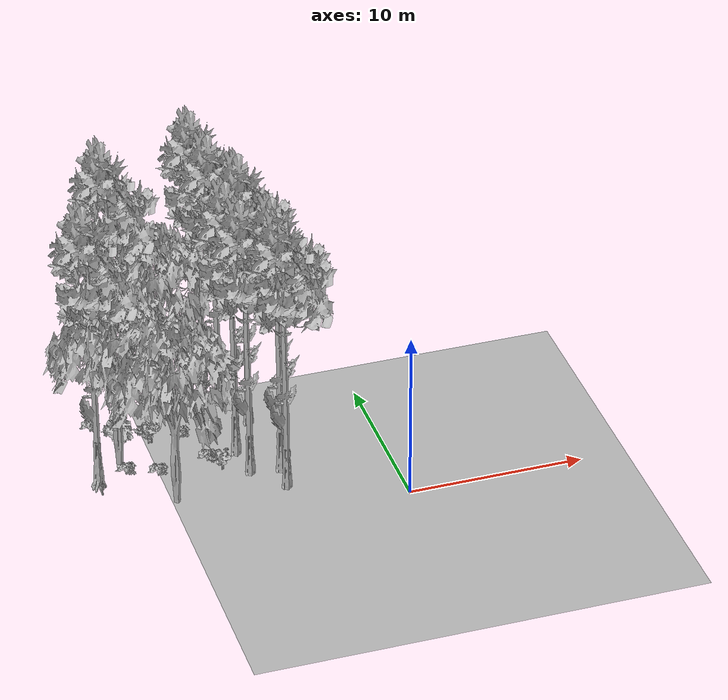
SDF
<sdf version="1.7">
 <world name="default">
  <model name="ground_plane">
   <static>1</static>
   <link name="link">
    <collision name="collision">
     <pose>-50 0 0 0 -0 0</pose>
     <geometry><plane><normal>0 0 1</normal><size>80 80</size></plane></geometry>
     <surface><contact><ode><min_depth>0.01</min_depth><max_vel>0</max_vel></ode></contact></surface>
    </collision>
    <visual name="grass">
     <cast_shadows>0</cast_shadows>
     <geometry>
      <mesh>
       <scale>0.46714285714285714 0.46714285714285714 0.1</scale>
       <uri>file://grass_plane/meshes/grass_plane.dae</uri>
      </mesh>
     </geometry>
    </visual>
   </link>
  </model>
  <model name="Tree 45">
   <static>1</static>
   <pose>-13.327303797383582 12.374902359999602 0 1.57079 -0 0</pose>
   <link name="link">
    <collision name="collision">
     <geometry><mesh><scale>3.5 5 3.5</scale><uri>model://tree_9/meshes/tree_9.obj</uri></mesh></geometry>
    </collision>
    <visual name="visual">
     <geometry><mesh><scale>3.5 5 3.5</scale><uri>model://tree_9/meshes/tree_9.obj</uri></mesh></geometry>
    </visual>
   </link>
  </model>
  <model name="Tree 61">
   <static>1</static>
   <pose>-12.430260159815973 3.0527523771211023 0 1.57079 -0 0</pose>
   <link name="link">
    <collision name="collision">
     <geometry><mesh><scale>3.5 5 3.5</scale><uri>model://tree_2/meshes/tree_2.obj</uri></mesh></geometry>
    </collision>
    <visual name="visual">
     <geometry><mesh><scale>3.5 5 3.5</scale><uri>model://tree_2/meshes/tree_2.obj</uri></mesh></geometry>
    </visual>
   </link>
  </model>
  <model name="Tree 108">
   <static>1</static>
   <pose>-15.920093412465555 6.312259931016911 0 1.57079 -0 0</pose>
   <link name="link">
    <collision name="collision">
     <geometry><mesh><scale>3.5 5 3.5</scale><uri>model://tree_9/meshes/tree_9.obj</uri></mesh></geometry>
    </collision>
    <visual name="visual">
     <geometry><mesh><scale>3.5 5 3.5</scale><uri>model://tree_9/meshes/tree_9.obj</uri></mesh></geometry>
    </visual>
   </link>
  </model>
  <model name="Tree 134">
   <static>1</static>
   <pose>-14.575441794545334 7.160118310140405 0 1.57079 -0 0</pose>
   <link name="link">
    <collision name="collision">
     <geometry><mesh><scale>3.5 5 3.5</scale><uri>model://tree_2/meshes/tree_2.obj</uri></mesh></geometry>
    </collision>
    <visual name="visual">
     <geometry><mesh><scale>3.5 5 3.5</scale><uri>model://tree_2/meshes/tree_2.obj</uri></mesh></geometry>
    </visual>
   </link>
  </model>
  <model name="Tree 144">
   <static>1</static>
   <pose>-8.034001315591606 6.3796187360879415 0 1.57079 -0 0</pose>
   <link name="link">
    <collision name="collision">
     <geometry><mesh><scale>3.5 5 3.5</scale><uri>model://tree_9/meshes/tree_9.obj</uri></mesh></geometry>
    </collision>
    <visual name="visual">
     <geometry><mesh><scale>3.5 5 3.5</scale><uri>model://tree_9/meshes/tree_9.obj</uri></mesh></geometry>
    </visual>
   </link>
  </model>
  <model name="Tree 205">
   <static>1</static>
   <pose>-6.253399948350676 2.498516302489932 0 1.57079 -0 0</pose>
   <link name="link">
    <collision name="collision">
     <geometry><mesh><scale>3.5 5 3.5</scale><uri>model://tree_9/meshes/tree_9.obj</uri></mesh></geometry>
    </collision>
    <visual name="visual">
     <geometry><mesh><scale>3.5 5 3.5</scale><uri>model://tree_9/meshes/tree_9.obj</uri></mesh></geometry>
    </visual>
   </link>
  </model>
  <model name="Tree 247">
   <static>1</static>
   <pose>-7.79886010430252 14.084381278126791 0 1.57079 -0 0</pose>
   <link name="link">
    <collision name="collision">
     <geometry><mesh><scale>3.5 5 3.5</scale><uri>model://tree_9/meshes/tree_9.obj</uri></mesh></geometry>
    </collision>
    <visual name="visual">
     <geometry><mesh><scale>3.5 5 3.5</scale><uri>model://tree_9/meshes/tree_9.obj</uri></mesh></geometry>
    </visual>
   </link>
  </model>
  <model name="Tree 305">
   <static>1</static>
   <pose>-6.119344591131082 4.107920647875417 0 1.57079 -0 0</pose>
   <link name="link">
    <collision name="collision">
     <geometry><mesh><scale>3.5 5 3.5</scale><uri>model://tree_9/meshes/tree_9.obj</uri></mesh></geometry>
    </collision>
    <visual name="visual">
     <geometry><mesh><scale>3.5 5 3.5</scale><uri>model://tree_9/meshes/tree_9.obj</uri></mesh></geometry>
    </visual>
   </link>
  </model>
  <model name="Tree 337">
   <static>1</static>
   <pose>-7.609581917076259 11.363712276573054 0 1.57079 -0 0</pose>
   <link name="link">
    <collision name="collision">
     <geometry><mesh><scale>3.5 5 3.5</scale><uri>model://tree_9/meshes/tree_9.obj</uri></mesh></geometry>
    </collision>
    <visual name="visual">
     <geometry><mesh><scale>3.5 5 3.5</scale><uri>model://tree_9/meshes/tree_9.obj</uri></mesh></geometry>
    </visual>
   </link>
  </model>
  <model name="Tree 434">
   <static>1</static>
   <pose>-11.061807336321504 12.248148437770467 0 1.57079 -0 0</pose>
   <link name="link">
    <collision name="collision">
     <geometry><mesh><scale>3.5 5 3.5</scale><uri>model://tree_2/meshes/tree_2.obj</uri></mesh></geometry>
    </collision>
    <visual name="visual">
     <geometry><mesh><scale>3.5 5 3.5</scale><uri>model://tree_2/meshes/tree_2.obj</uri></mesh></geometry>
    </visual>
   </link>
  </model>
  <model name="Tree 438">
   <static>1</static>
   <pose>-6.57428874936155 8.930906844108428 0 1.57079 -0 0</pose>
   <link name="link">
    <collision name="collision">
     <geometry><mesh><scale>3.5 5 3.5</scale><uri>model://tree_9/meshes/tree_9.obj</uri></mesh></geometry>
    </collision>
    <visual name="visual">
     <geometry><mesh><scale>3.5 5 3.5</scale><uri>model://tree_9/meshes/tree_9.obj</uri></mesh></geometry>
    </visual>
   </link>
  </model>
  <model name="Tree 599">
   <static>1</static>
   <pose>-7.810266054121161 4.354440784657605 0 1.57079 -0 0</pose>
   <link name="link">
    <collision name="collision">
     <geometry><mesh><scale>3.5 5 3.5</scale><uri>model://tree_9/meshes/tree_9.obj</uri></mesh></geometry>
    </collision>
    <visual name="visual">
     <geometry><mesh><scale>3.5 5 3.5</scale><uri>model://tree_9/meshes/tree_9.obj</uri></mesh></geometry>
    </visual>
   </link>
  </model>
  <model name="Bush 15">
   <static>1</static>
   <pose>-10.475844090487087 9.188786663878005 0 1.57079 -0 0</pose>
   <link name="link">
    <collision name="collision">
     <geometry><mesh><scale>2 2 2</scale><uri>model://bush_2/meshes/bush_2.obj</uri></mesh></geometry>
     <surface><contact><collide_without_contact>false</collide_without_contact></contact></surface>
    </collision>
    <visual name="visual">
     <geometry><mesh><scale>2 2 2</scale><uri>model://bush_2/meshes/bush_2.obj</uri></mesh></geometry>
    </visual>
   </link>
  </model>
  <model name="Bush 31">
   <static>1</static>
   <pose>-15.129125335544874 11.303893940587855 0 1.57079 -0 0</pose>
   <link name="link">
    <collision name="collision">
     <geometry><mesh><scale>2 2 2</scale><uri>model://bush_2/meshes/bush_2.obj</uri></mesh></geometry>
     <surface><contact><collide_without_contact>false</collide_without_contact></contact></surface>
    </collision>
    <visual name="visual">
     <geometry><mesh><scale>2 2 2</scale><uri>model://bush_2/meshes/bush_2.obj</uri></mesh></geometry>
    </visual>
   </link>
  </model>
  <model name="Bush 38">
   <static>1</static>
   <pose>-9.211254365594133 5.135652467400426 0 1.57079 -0 0</pose>
   <link name="link">
    <collision name="collision">
     <geometry><mesh><scale>2 2 2</scale><uri>model://bush_0/meshes/bush_0.obj</uri></mesh></geometry>
     <surface><contact><collide_without_contact>false</collide_without_contact></contact></surface>
    </collision>
    <visual name="visual">
     <geometry><mesh><scale>2 2 2</scale><uri>model://bush_0/meshes/bush_0.obj</uri></mesh></geometry>
    </visual>
   </link>
  </model>
  <model name="Bush 56">
   <static>1</static>
   <pose>-14.044927853939999 8.93101389713923 0 1.57079 -0 0</pose>
   <link name="link">
    <collision name="collision">
     <geometry><mesh><scale>2 2 2</scale><uri>model://bush_1/meshes/bush_1.obj</uri></mesh></geometry>
     <surface><contact><collide_without_contact>false</collide_without_contact></contact></surface>
    </collision>
    <visual name="visual">
     <geometry><mesh><scale>2 2 2</scale><uri>model://bush_1/meshes/bush_1.obj</uri></mesh></geometry>
    </visual>
   </link>
  </model>
  <model name="Bush 70">
   <static>1</static>
   <pose>-10.870586699829644 11.132095184217377 0 1.57079 -0 0</pose>
   <link name="link">
    <collision name="collision">
     <geometry><mesh><scale>2 2 2</scale><uri>model://bush_2/meshes/bush_2.obj</uri></mesh></geometry>
     <surface><contact><collide_without_contact>false</collide_without_contact></contact></surface>
    </collision>
    <visual name="visual">
     <geometry><mesh><scale>2 2 2</scale><uri>model://bush_2/meshes/bush_2.obj</uri></mesh></geometry>
    </visual>
   </link>
  </model>
  <model name="Bush 79">
   <static>1</static>
   <pose>-14.244526805550308 6.7411466911454525 0 1.57079 -0 0</pose>
   <link name="link">
    <collision name="collision">
     <geometry><mesh><scale>2 2 2</scale><uri>model://bush_2/meshes/bush_2.obj</uri></mesh></geometry>
     <surface><contact><collide_without_contact>false</collide_without_contact></contact></surface>
    </collision>
    <visual name="visual">
     <geometry><mesh><scale>2 2 2</scale><uri>model://bush_2/meshes/bush_2.obj</uri></mesh></geometry>
    </visual>
   </link>
  </model>
  <model name="Bush 105">
   <static>1</static>
   <pose>-12.21774726316756 8.831503435701137 0 1.57079 -0 0</pose>
   <link name="link">
    <collision name="collision">
     <geometry><mesh><scale>2 2 2</scale><uri>model://bush_5/meshes/bush_5.obj</uri></mesh></geometry>
     <surface><contact><collide_without_contact>false</collide_without_contact></contact></surface>
    </collision>
    <visual name="visual">
     <geometry><mesh><scale>2 2 2</scale><uri>model://bush_5/meshes/bush_5.obj</uri></mesh></geometry>
    </visual>
   </link>
  </model>
  <model name="Bush 459">
   <static>1</static>
   <pose>-12.583822115529394 6.081453184566605 0 1.57079 -0 0</pose>
   <link name="link">
    <collision name="collision">
     <geometry><mesh><scale>2 2 2</scale><uri>model://bush_2/meshes/bush_2.obj</uri></mesh></geometry>
     <surface><contact><collide_without_contact>false</collide_without_contact></contact></surface>
    </collision>
    <visual name="visual">
     <geometry><mesh><scale>2 2 2</scale><uri>model://bush_2/meshes/bush_2.obj</uri></mesh></geometry>
    </visual>
   </link>
  </model>
  <model name="Bush 518">
   <static>1</static>
   <pose>-9.635701588034106 6.568320760241704 0 1.57079 -0 0</pose>
   <link name="link">
    <collision name="collision">
     <geometry><mesh><scale>2 2 2</scale><uri>model://bush_2/meshes/bush_2.obj</uri></mesh></geometry>
     <surface><contact><collide_without_contact>false</collide_without_contact></contact></surface>
    </collision>
    <visual name="visual">
     <geometry><mesh><scale>2 2 2</scale><uri>model://bush_2/meshes/bush_2.obj</uri></mesh></geometry>
    </visual>
   </link>
  </model>
  <model name="Bush 556">
   <static>1</static>
   <pose>-12.418305996219821 8.824520025174323 0 1.57079 -0 0</pose>
   <link name="link">
    <collision name="collision">
     <geometry><mesh><scale>2 2 2</scale><uri>model://bush_0/meshes/bush_0.obj</uri></mesh></geometry>
     <surface><contact><collide_without_contact>false</collide_without_contact></contact></surface>
    </collision>
    <visual name="visual">
     <geometry><mesh><scale>2 2 2</scale><uri>model://bush_0/meshes/bush_0.obj</uri></mesh></geometry>
    </visual>
   </link>
  </model>
  <model name="Bush 606">
   <static>1</static>
   <pose>-11.840895863901363 13.486155751176355 0 1.57079 -0 0</pose>
   <link name="link">
    <collision name="collision">
     <geometry><mesh><scale>2 2 2</scale><uri>model://bush_1/meshes/bush_1.obj</uri></mesh></geometry>
     <surface><contact><collide_without_contact>false</collide_without_contact></contact></surface>
    </collision>
    <visual name="visual">
     <geometry><mesh><scale>2 2 2</scale><uri>model://bush_1/meshes/bush_1.obj</uri></mesh></geometry>
    </visual>
   </link>
  </model>
 </world>
</sdf>
